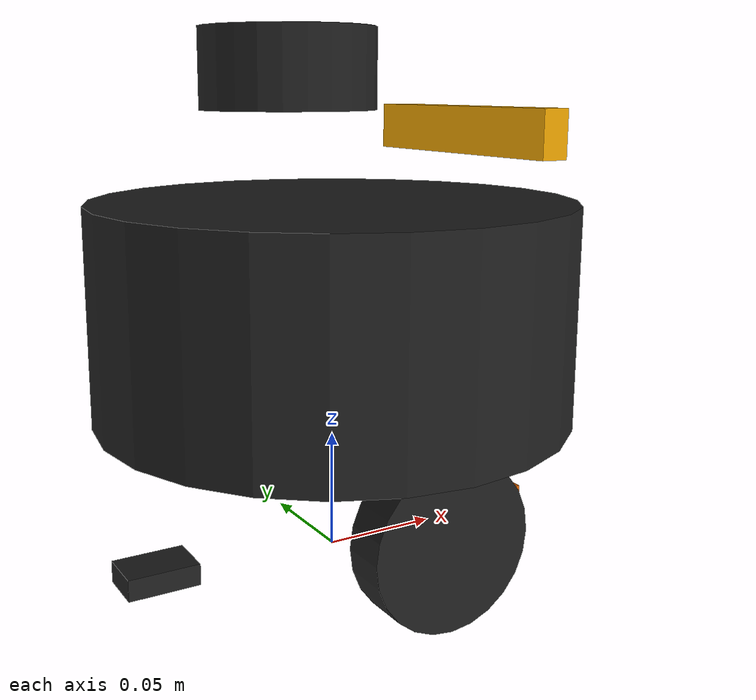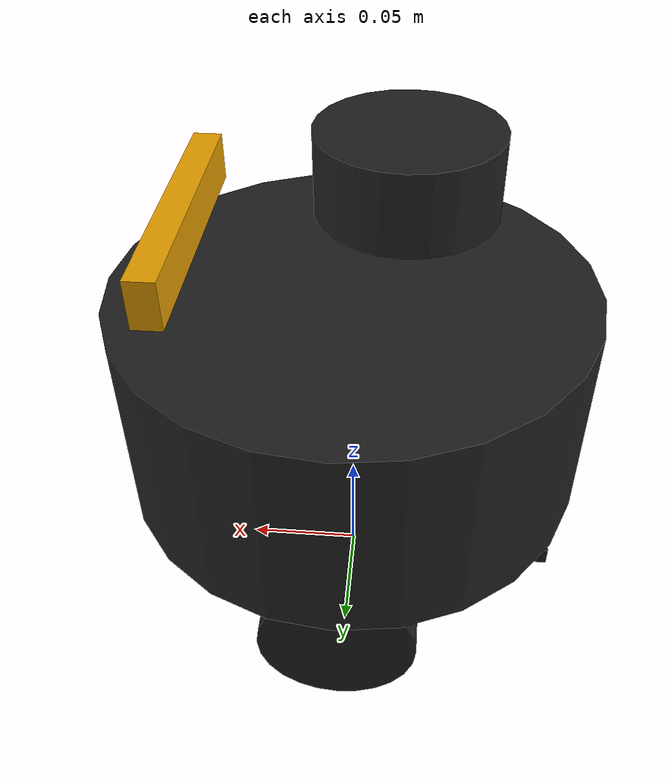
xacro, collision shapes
<?xml version="1.0" ?>
<robot name="robot_PIFBOT" xmlns:xacro="http://ros.org/wiki/xacro">
  <xacro:include filename="$(find robot_description)/urdf/PIFBOT/common_properties.xacro"/>
  <xacro:include filename="$(find robot_description)/urdf/PIFBOT/PIFBOT.gazebo.xacro"/>

  <link name="base_footprint"/>

  <joint name="base_joint" type="fixed">
    <parent link="base_footprint"/>
    <child link="base_link"/>
    <origin xyz="0 0 0.010" rpy="0 0 0"/>
  </joint>

  <link name="base_link">
    <visual>
      <origin xyz="0 0 0.0525" rpy="0 0 -1.5707"/>
      <geometry>
        <mesh filename="package://robot_description/meshes/PIFBOT/dae/robot_base.dae"/>
      </geometry>
      <material name="light_black"/>
    </visual>

    <collision>
      <origin xyz="0 0 0.095" rpy="0 0 0"/>
      <geometry>
        <cylinder length="0.09" radius="0.1"/>
      </geometry>
    </collision>

    <inertial>
      <origin xyz="0 0 0" rpy="0 0 0"/>
      <mass value="8.2573504e-01"/>
      <inertia ixx="2.2124416e-03" ixy="-1.2294101e-05" ixz="3.4938785e-05"
               iyy="2.1193702e-03" iyz="-5.0120904e-06"
               izz="2.0064271e-03" />
    </inertial>
  </link>

  <joint name="wheel_left_joint" type="continuous">
    <parent link="base_link"/>
    <child link="wheel_left_link"/>
    <origin xyz="0.0 0.08 0.023" rpy="-1.57 0 0"/>
    <axis xyz="0 0 1"/>
  </joint>

  <link name="wheel_left_link">
    <visual>
      <origin xyz="0 0 0.014" rpy="0 1.5707 0"/>
      <geometry>
        <mesh filename="package://robot_description/meshes/PIFBOT/dae/robot_wheel.dae"/>
      </geometry>
      <material name="dark"/>
    </visual>

    <collision>
      <origin xyz="0 0 0" rpy="0 0 0"/>
      <geometry>
        <cylinder length="0.018" radius="0.033"/>
      </geometry>
    </collision>

    <inertial>
      <origin xyz="0 0 0" />
      <mass value="2.8498940e-02" />
      <inertia ixx="1.1175580e-05" ixy="-4.2369783e-11" ixz="-5.9381719e-09"
               iyy="1.1192413e-05" iyz="-1.4400107e-11"
               izz="2.0712558e-05" />
      </inertial>
  </link>

  <joint name="wheel_right_joint" type="continuous">
    <parent link="base_link"/>
    <child link="wheel_right_link"/>
    <origin xyz="0.0 -0.080 0.023" rpy="-1.57 0 0"/>
    <axis xyz="0 0 1"/>
  </joint>

  <link name="wheel_right_link">
    <visual>
      <origin xyz="0 0 -0.014" rpy="0 -1.5707 0"/>
      <geometry>
        <mesh filename="package://robot_description/meshes/PIFBOT/dae/robot_wheel.dae"/>
      </geometry>
      <material name="dark"/>
    </visual>

    <collision>
      <origin xyz="0 0 0" rpy="0 0 0"/>
      <geometry>
        <cylinder length="0.018" radius="0.033"/>
      </geometry>
    </collision>

    <inertial>
      <origin xyz="0 0 0" />
      <mass value="2.8498940e-02" />
      <inertia ixx="1.1175580e-05" ixy="-4.2369783e-11" ixz="-5.9381719e-09"
               iyy="1.1192413e-05" iyz="-1.4400107e-11"
               izz="2.0712558e-05" />
      </inertial>
  </link>

  <joint name="caster_back_joint" type="fixed">
    <parent link="base_link"/>
    <child link="caster_back_link"/>
    <origin xyz="-0.081 0 -0.004" rpy="-1.57 0 0"/>
  </joint>

  <link name="caster_back_link">
    <collision>
      <origin xyz="0 0.001 0" rpy="0 0 0"/>
      <geometry>
        <box size="0.030 0.009 0.020"/>
      </geometry>
    </collision>

    <inertial>
      <origin xyz="0 0 0" />
      <mass value="0.005" />
      <inertia ixx="0.001" ixy="0.0" ixz="0.0"
               iyy="0.001" iyz="0.0"
               izz="0.001" />
    </inertial>
  </link>

  <joint name="caster_front_joint" type="fixed">
    <parent link="base_link"/>
    <child link="caster_front_link"/>
    <origin xyz="0.081 0 -0.0025" rpy="-1.57 0 0"/>
  </joint>

  <link name="caster_front_link">
    <collision>
      <origin xyz="0 0.001 0" rpy="0 0 0"/>
      <geometry>
        <box size="0.030 0.009 0.020"/>
      </geometry>
    </collision>

    <inertial>
      <origin xyz="0 0 0" />
      <mass value="0.005" />
      <inertia ixx="0.001" ixy="0.0" ixz="0.0"
               iyy="0.001" iyz="0.0"
               izz="0.001" />
    </inertial>
  </link>

  <joint name="imu_joint" type="fixed">
    <parent link="base_link"/>
    <child link="imu_link"/>
    <origin xyz="-0.032 0 0.068" rpy="0 0 0"/>
  </joint>

  <link name="imu_link"/>

  <joint name="scan_joint" type="fixed">
    <parent link="base_link"/>
    <child link="base_scan"/>
    <origin xyz="-0.02 0 0.172" rpy="0 0 0"/>
  </joint>

  <link name="base_scan">
    <collision>
      <origin xyz="0.0 0 0.02" rpy="0 0 0"/>
      <geometry>
        <cylinder length="0.0315" radius="0.035"/>
      </geometry>
    </collision>

    <inertial>
      <mass value="0.114" />
      <origin xyz="0 0 0" />
      <inertia ixx="0.001" ixy="0.0" ixz="0.0"
               iyy="0.001" iyz="0.0"
               izz="0.001" />
    </inertial>
  </link>

  <joint name="camera_joint" type="fixed">
    <origin xyz="0.064 -0.065 0.16" rpy="0 0 0"/>
    <parent link="base_link"/>
    <child link="camera_link"/>
  </joint>

  <link name="camera_link">
    <collision>
      <origin xyz="0.003 0.065 0.007" rpy="0 0 0"/>
      <geometry>
        <box size="0.012 0.115 0.020"/>
      </geometry>
    </collision>
  </link>

  <joint name="camera_depth_joint" type="fixed">
    <origin xyz="0.005 0.019 0.013" rpy="0 0 0"/>
    <parent link="camera_link"/>
    <child link="camera_depth_frame"/>
  </joint>

  <link name="camera_depth_frame"/>

  <joint name="camera_depth_optical_joint" type="fixed">
    <origin xyz="0 0 0" rpy="-1.57 0 -1.57"/>
    <parent link="camera_depth_frame"/>
    <child link="camera_depth_optical_frame"/>
  </joint>
  <link name="camera_depth_optical_frame"/>

</robot>
